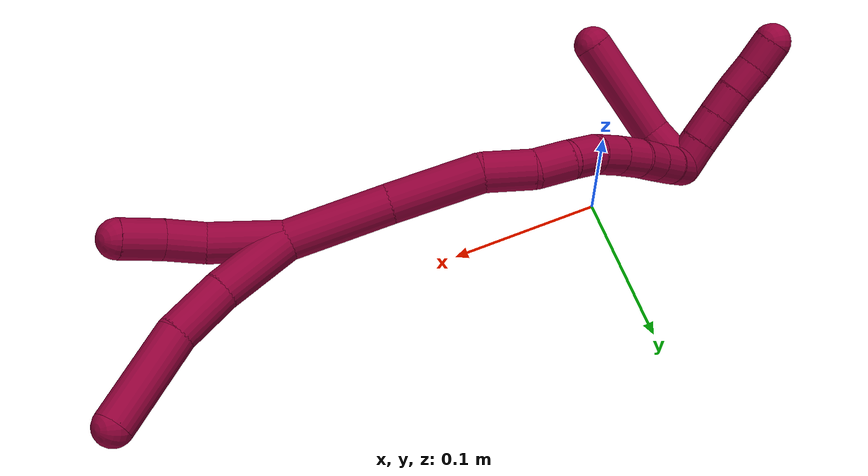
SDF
<sdf version="1.7">
 <world name="default">
  <model name="8">
   <static>0</static>
   <link name="8">
    <collision name="collision-cylinder-e_1_2_8">
     <pose>0.011384 0.009846 0.019577 -0.465997 0.479127 -0.115797</pose>
     <geometry><cylinder><radius>0.0125</radius><length>0.049389</length></cylinder></geometry>
     <surface>
      <friction><ode><mu>1.16</mu><mu2>1.16</mu2><slip1>0</slip1><slip2>0</slip2></ode></friction>
      <contact><ode><kp>1e+06</kp><kd>1</kd><max_vel>0</max_vel><min_depth>0.001</min_depth></ode></contact>
     </surface>
    </collision>
    <visual name="visual-cylinder-e_1_2_8">
     <pose>0.011384 0.009846 0.019577 -0.465997 0.479127 -0.115797</pose>
     <geometry><cylinder><radius>0.0125</radius><length>0.049389</length></cylinder></geometry>
     <material><ambient>0.584314 0 0.227451 1</ambient></material>
    </visual>
    <collision name="collision-cylinder-e_2_8_9">
     <pose>0.030438 0.028812 0.053347 -0.571119 0.4267 -0.127037</pose>
     <geometry><cylinder><radius>0.0125</radius><length>0.037062</length></cylinder></geometry>
     <surface>
      <friction><ode><mu>1.16</mu><mu2>1.16</mu2><slip1>0</slip1><slip2>0</slip2></ode></friction>
      <contact><ode><kp>1e+06</kp><kd>1</kd><max_vel>0</max_vel><min_depth>0.001</min_depth></ode></contact>
     </surface>
    </collision>
    <visual name="visual-cylinder-e_2_8_9">
     <pose>0.030438 0.028812 0.053347 -0.571119 0.4267 -0.127037</pose>
     <geometry><cylinder><radius>0.0125</radius><length>0.037062</length></cylinder></geometry>
     <material><ambient>0.584314 0 0.227451 1</ambient></material>
    </visual>
    <collision name="collision-cylinder-e_3_9_6">
     <pose>0.048497 0.058759 0.089169 -0.766531 0.333111 -0.135361</pose>
     <geometry><cylinder><radius>0.0125</radius><length>0.063549</length></cylinder></geometry>
     <surface>
      <friction><ode><mu>1.16</mu><mu2>1.16</mu2><slip1>0</slip1><slip2>0</slip2></ode></friction>
      <contact><ode><kp>1e+06</kp><kd>1</kd><max_vel>0</max_vel><min_depth>0.001</min_depth></ode></contact>
     </surface>
    </collision>
    <visual name="visual-cylinder-e_3_9_6">
     <pose>0.048497 0.058759 0.089169 -0.766531 0.333111 -0.135361</pose>
     <geometry><cylinder><radius>0.0125</radius><length>0.063549</length></cylinder></geometry>
     <material><ambient>0.584314 0 0.227451 1</ambient></material>
    </visual>
    <collision name="collision-cylinder-e_1_2_10">
     <pose>0.016674 -0.005962 0.015488 0.367466 0.78775 0.154152</pose>
     <geometry><cylinder><radius>0.0125</radius><length>0.047052</length></cylinder></geometry>
     <surface>
      <friction><ode><mu>1.16</mu><mu2>1.16</mu2><slip1>0</slip1><slip2>0</slip2></ode></friction>
      <contact><ode><kp>1e+06</kp><kd>1</kd><max_vel>0</max_vel><min_depth>0.001</min_depth></ode></contact>
     </surface>
    </collision>
    <visual name="visual-cylinder-e_1_2_10">
     <pose>0.016674 -0.005962 0.015488 0.367466 0.78775 0.154152</pose>
     <geometry><cylinder><radius>0.0125</radius><length>0.047052</length></cylinder></geometry>
     <material><ambient>0.584314 0 0.227451 1</ambient></material>
    </visual>
    <collision name="collision-cylinder-e_2_10_11">
     <pose>0.038949 -0.015821 0.042038 0.338655 0.445513 0.077414</pose>
     <geometry><cylinder><radius>0.0125</radius><length>0.025993</length></cylinder></geometry>
     <surface>
      <friction><ode><mu>1.16</mu><mu2>1.16</mu2><slip1>0</slip1><slip2>0</slip2></ode></friction>
      <contact><ode><kp>1e+06</kp><kd>1</kd><max_vel>0</max_vel><min_depth>0.001</min_depth></ode></contact>
     </surface>
    </collision>
    <visual name="visual-cylinder-e_2_10_11">
     <pose>0.038949 -0.015821 0.042038 0.338655 0.445513 0.077414</pose>
     <geometry><cylinder><radius>0.0125</radius><length>0.025993</length></cylinder></geometry>
     <material><ambient>0.584314 0 0.227451 1</ambient></material>
    </visual>
    <collision name="collision-cylinder-e_3_11_5">
     <pose>0.049377 -0.022595 0.06535 0.230806 0.366312 0.042937</pose>
     <geometry><cylinder><radius>0.0125</radius><length>0.026955</length></cylinder></geometry>
     <surface>
      <friction><ode><mu>1.16</mu><mu2>1.16</mu2><slip1>0</slip1><slip2>0</slip2></ode></friction>
      <contact><ode><kp>1e+06</kp><kd>1</kd><max_vel>0</max_vel><min_depth>0.001</min_depth></ode></contact>
     </surface>
    </collision>
    <visual name="visual-cylinder-e_3_11_5">
     <pose>0.049377 -0.022595 0.06535 0.230806 0.366312 0.042937</pose>
     <geometry><cylinder><radius>0.0125</radius><length>0.026955</length></cylinder></geometry>
     <material><ambient>0.584314 0 0.227451 1</ambient></material>
    </visual>
    <collision name="collision-cylinder-e_1_2_12">
     <pose>-0.022391 -0.002345 -0.023534 3.04229 -0.758045 -2.89333</pose>
     <geometry><cylinder><radius>0.0125</radius><length>0.065136</length></cylinder></geometry>
     <surface>
      <friction><ode><mu>1.16</mu><mu2>1.16</mu2><slip1>0</slip1><slip2>0</slip2></ode></friction>
      <contact><ode><kp>1e+06</kp><kd>1</kd><max_vel>0</max_vel><min_depth>0.001</min_depth></ode></contact>
     </surface>
    </collision>
    <visual name="visual-cylinder-e_1_2_12">
     <pose>-0.022391 -0.002345 -0.023534 3.04229 -0.758045 -2.89333</pose>
     <geometry><cylinder><radius>0.0125</radius><length>0.065136</length></cylinder></geometry>
     <material><ambient>0.584314 0 0.227451 1</ambient></material>
    </visual>
    <collision name="collision-cylinder-e_2_12_13">
     <pose>-0.066246 -0.006093 -0.067073 3.07155 -0.819354 -2.98059</pose>
     <geometry><cylinder><radius>0.0125</radius><length>0.05875</length></cylinder></geometry>
     <surface>
      <friction><ode><mu>1.16</mu><mu2>1.16</mu2><slip1>0</slip1><slip2>0</slip2></ode></friction>
      <contact><ode><kp>1e+06</kp><kd>1</kd><max_vel>0</max_vel><min_depth>0.001</min_depth></ode></contact>
     </surface>
    </collision>
    <visual name="visual-cylinder-e_2_12_13">
     <pose>-0.066246 -0.006093 -0.067073 3.07155 -0.819354 -2.98059</pose>
     <geometry><cylinder><radius>0.0125</radius><length>0.05875</length></cylinder></geometry>
     <material><ambient>0.584314 0 0.227451 1</ambient></material>
    </visual>
    <collision name="collision-cylinder-e_3_13_14">
     <pose>-0.098321 -0.00417 -0.098491 -2.85803 -0.728684 2.4253</pose>
     <geometry><cylinder><radius>0.0125</radius><length>0.031869</length></cylinder></geometry>
     <surface>
      <friction><ode><mu>1.16</mu><mu2>1.16</mu2><slip1>0</slip1><slip2>0</slip2></ode></friction>
      <contact><ode><kp>1e+06</kp><kd>1</kd><max_vel>0</max_vel><min_depth>0.001</min_depth></ode></contact>
     </surface>
    </collision>
    <visual name="visual-cylinder-e_3_13_14">
     <pose>-0.098321 -0.00417 -0.098491 -2.85803 -0.728684 2.4253</pose>
     <geometry><cylinder><radius>0.0125</radius><length>0.031869</length></cylinder></geometry>
     <material><ambient>0.584314 0 0.227451 1</ambient></material>
    </visual>
    <collision name="collision-cylinder-e_4_14_15">
     <pose>-0.115439 -0.001058 -0.119713 3.1198 -0.585655 -3.06935</pose>
     <geometry><cylinder><radius>0.0125</radius><length>0.023546</length></cylinder></geometry>
     <surface>
      <friction><ode><mu>1.16</mu><mu2>1.16</mu2><slip1>0</slip1><slip2>0</slip2></ode></friction>
      <contact><ode><kp>1e+06</kp><kd>1</kd><max_vel>0</max_vel><min_depth>0.001</min_depth></ode></contact>
     </surface>
    </collision>
    <visual name="visual-cylinder-e_4_14_15">
     <pose>-0.115439 -0.001058 -0.119713 3.1198 -0.585655 -3.06935</pose>
     <geometry><cylinder><radius>0.0125</radius><length>0.023546</length></cylinder></geometry>
     <material><ambient>0.584314 0 0.227451 1</ambient></material>
    </visual>
    <collision name="collision-cylinder-e_5_15_16">
     <pose>-0.124787 -0.001571 -0.139169 3.11056 -0.28626 -2.92708</pose>
     <geometry><cylinder><radius>0.0125</radius><length>0.020123</length></cylinder></geometry>
     <surface>
      <friction><ode><mu>1.16</mu><mu2>1.16</mu2><slip1>0</slip1><slip2>0</slip2></ode></friction>
      <contact><ode><kp>1e+06</kp><kd>1</kd><max_vel>0</max_vel><min_depth>0.001</min_depth></ode></contact>
     </surface>
    </collision>
    <visual name="visual-cylinder-e_5_15_16">
     <pose>-0.124787 -0.001571 -0.139169 3.11056 -0.28626 -2.92708</pose>
     <geometry><cylinder><radius>0.0125</radius><length>0.020123</length></cylinder></geometry>
     <material><ambient>0.584314 0 0.227451 1</ambient></material>
    </visual>
    <collision name="collision-cylinder-e_6_16_17">
     <pose>-0.128533 -0.000637 -0.158861 -3.01935 -0.089144 1.2596</pose>
     <geometry><cylinder><radius>0.0125</radius><length>0.020321</length></cylinder></geometry>
     <surface>
      <friction><ode><mu>1.16</mu><mu2>1.16</mu2><slip1>0</slip1><slip2>0</slip2></ode></friction>
      <contact><ode><kp>1e+06</kp><kd>1</kd><max_vel>0</max_vel><min_depth>0.001</min_depth></ode></contact>
     </surface>
    </collision>
    <visual name="visual-cylinder-e_6_16_17">
     <pose>-0.128533 -0.000637 -0.158861 -3.01935 -0.089144 1.2596</pose>
     <geometry><cylinder><radius>0.0125</radius><length>0.020321</length></cylinder></geometry>
     <material><ambient>0.584314 0 0.227451 1</ambient></material>
    </visual>
    <collision name="collision-cylinder-e_7_17_18">
     <pose>-0.1303 0.002318 -0.178793 -2.96928 -0.085679 0.921375</pose>
     <geometry><cylinder><radius>0.0125</radius><length>0.020144</length></cylinder></geometry>
     <surface>
      <friction><ode><mu>1.16</mu><mu2>1.16</mu2><slip1>0</slip1><slip2>0</slip2></ode></friction>
      <contact><ode><kp>1e+06</kp><kd>1</kd><max_vel>0</max_vel><min_depth>0.001</min_depth></ode></contact>
     </surface>
    </collision>
    <visual name="visual-cylinder-e_7_17_18">
     <pose>-0.1303 0.002318 -0.178793 -2.96928 -0.085679 0.921375</pose>
     <geometry><cylinder><radius>0.0125</radius><length>0.020144</length></cylinder></geometry>
     <material><ambient>0.584314 0 0.227451 1</ambient></material>
    </visual>
    <collision name="collision-cylinder-e_8_18_19">
     <pose>-0.130125 0.00543 -0.198541 -3.00142 0.103684 -1.27301</pose>
     <geometry><cylinder><radius>0.0125</radius><length>0.020027</length></cylinder></geometry>
     <surface>
      <friction><ode><mu>1.16</mu><mu2>1.16</mu2><slip1>0</slip1><slip2>0</slip2></ode></friction>
      <contact><ode><kp>1e+06</kp><kd>1</kd><max_vel>0</max_vel><min_depth>0.001</min_depth></ode></contact>
     </surface>
    </collision>
    <visual name="visual-cylinder-e_8_18_19">
     <pose>-0.130125 0.00543 -0.198541 -3.00142 0.103684 -1.27301</pose>
     <geometry><cylinder><radius>0.0125</radius><length>0.020027</length></cylinder></geometry>
     <material><ambient>0.584314 0 0.227451 1</ambient></material>
    </visual>
    <collision name="collision-cylinder-e_9_19_20">
     <pose>-0.128354 0.00824 -0.218281 -2.999 0.073492 -0.950793</pose>
     <geometry><cylinder><radius>0.0125</radius><length>0.020014</length></cylinder></geometry>
     <surface>
      <friction><ode><mu>1.16</mu><mu2>1.16</mu2><slip1>0</slip1><slip2>0</slip2></ode></friction>
      <contact><ode><kp>1e+06</kp><kd>1</kd><max_vel>0</max_vel><min_depth>0.001</min_depth></ode></contact>
     </surface>
    </collision>
    <visual name="visual-cylinder-e_9_19_20">
     <pose>-0.128354 0.00824 -0.218281 -2.999 0.073492 -0.950793</pose>
     <geometry><cylinder><radius>0.0125</radius><length>0.020014</length></cylinder></geometry>
     <material><ambient>0.584314 0 0.227451 1</ambient></material>
    </visual>
    <collision name="collision-cylinder-e_10_20_1">
     <pose>-0.125916 0.01023 -0.238033 -3.08371 0.170531 -2.48844</pose>
     <geometry><cylinder><radius>0.0125</radius><length>0.02007</length></cylinder></geometry>
     <surface>
      <friction><ode><mu>1.16</mu><mu2>1.16</mu2><slip1>0</slip1><slip2>0</slip2></ode></friction>
      <contact><ode><kp>1e+06</kp><kd>1</kd><max_vel>0</max_vel><min_depth>0.001</min_depth></ode></contact>
     </surface>
    </collision>
    <visual name="visual-cylinder-e_10_20_1">
     <pose>-0.125916 0.01023 -0.238033 -3.08371 0.170531 -2.48844</pose>
     <geometry><cylinder><radius>0.0125</radius><length>0.02007</length></cylinder></geometry>
     <material><ambient>0.584314 0 0.227451 1</ambient></material>
    </visual>
    <collision name="collision-cylinder-e_1_1_21">
     <pose>-0.131278 0.004546 -0.251213 2.05714 -0.784529 -1.20348</pose>
     <geometry><cylinder><radius>0.0125</radius><length>0.02</length></cylinder></geometry>
     <surface>
      <friction><ode><mu>1.16</mu><mu2>1.16</mu2><slip1>0</slip1><slip2>0</slip2></ode></friction>
      <contact><ode><kp>1e+06</kp><kd>1</kd><max_vel>0</max_vel><min_depth>0.001</min_depth></ode></contact>
     </surface>
    </collision>
    <visual name="visual-cylinder-e_1_1_21">
     <pose>-0.131278 0.004546 -0.251213 2.05714 -0.784529 -1.20348</pose>
     <geometry><cylinder><radius>0.0125</radius><length>0.02</length></cylinder></geometry>
     <material><ambient>0.584314 0 0.227451 1</ambient></material>
    </visual>
    <collision name="collision-cylinder-e_2_21_22">
     <pose>-0.145423 -0.00773 -0.258216 2.12139 -0.786598 -1.2762</pose>
     <geometry><cylinder><radius>0.0125</radius><length>0.02</length></cylinder></geometry>
     <surface>
      <friction><ode><mu>1.16</mu><mu2>1.16</mu2><slip1>0</slip1><slip2>0</slip2></ode></friction>
      <contact><ode><kp>1e+06</kp><kd>1</kd><max_vel>0</max_vel><min_depth>0.001</min_depth></ode></contact>
     </surface>
    </collision>
    <visual name="visual-cylinder-e_2_21_22">
     <pose>-0.145423 -0.00773 -0.258216 2.12139 -0.786598 -1.2762</pose>
     <geometry><cylinder><radius>0.0125</radius><length>0.02</length></cylinder></geometry>
     <material><ambient>0.584314 0 0.227451 1</ambient></material>
    </visual>
    <collision name="collision-cylinder-e_3_22_23">
     <pose>-0.159696 -0.019664 -0.265552 2.12249 -0.802924 -1.2994</pose>
     <geometry><cylinder><radius>0.0125</radius><length>0.02</length></cylinder></geometry>
     <surface>
      <friction><ode><mu>1.16</mu><mu2>1.16</mu2><slip1>0</slip1><slip2>0</slip2></ode></friction>
      <contact><ode><kp>1e+06</kp><kd>1</kd><max_vel>0</max_vel><min_depth>0.001</min_depth></ode></contact>
     </surface>
    </collision>
    <visual name="visual-cylinder-e_3_22_23">
     <pose>-0.159696 -0.019664 -0.265552 2.12249 -0.802924 -1.2994</pose>
     <geometry><cylinder><radius>0.0125</radius><length>0.02</length></cylinder></geometry>
     <material><ambient>0.584314 0 0.227451 1</ambient></material>
    </visual>
    <collision name="collision-cylinder-e_4_23_24">
     <pose>-0.17416 -0.031089 -0.27329 2.21028 -0.813996 -1.41803</pose>
     <geometry><cylinder><radius>0.0125</radius><length>0.02</length></cylinder></geometry>
     <surface>
      <friction><ode><mu>1.16</mu><mu2>1.16</mu2><slip1>0</slip1><slip2>0</slip2></ode></friction>
      <contact><ode><kp>1e+06</kp><kd>1</kd><max_vel>0</max_vel><min_depth>0.001</min_depth></ode></contact>
     </surface>
    </collision>
    <visual name="visual-cylinder-e_4_23_24">
     <pose>-0.17416 -0.031089 -0.27329 2.21028 -0.813996 -1.41803</pose>
     <geometry><cylinder><radius>0.0125</radius><length>0.02</length></cylinder></geometry>
     <material><ambient>0.584314 0 0.227451 1</ambient></material>
    </visual>
    <collision name="collision-cylinder-e_5_24_4">
     <pose>-0.188942 -0.042474 -0.280396 2.04407 -0.849828 -1.27423</pose>
     <geometry><cylinder><radius>0.0125</radius><length>0.02</length></cylinder></geometry>
     <surface>
      <friction><ode><mu>1.16</mu><mu2>1.16</mu2><slip1>0</slip1><slip2>0</slip2></ode></friction>
      <contact><ode><kp>1e+06</kp><kd>1</kd><max_vel>0</max_vel><min_depth>0.001</min_depth></ode></contact>
     </surface>
    </collision>
    <visual name="visual-cylinder-e_5_24_4">
     <pose>-0.188942 -0.042474 -0.280396 2.04407 -0.849828 -1.27423</pose>
     <geometry><cylinder><radius>0.0125</radius><length>0.02</length></cylinder></geometry>
     <material><ambient>0.584314 0 0.227451 1</ambient></material>
    </visual>
    <collision name="collision-cylinder-e_1_1_25">
     <pose>-0.11916 -0.002962 -0.244508 1.32879 0.342402 0.269174</pose>
     <geometry><cylinder><radius>0.0125</radius><length>0.030103</length></cylinder></geometry>
     <surface>
      <friction><ode><mu>1.16</mu><mu2>1.16</mu2><slip1>0</slip1><slip2>0</slip2></ode></friction>
      <contact><ode><kp>1e+06</kp><kd>1</kd><max_vel>0</max_vel><min_depth>0.001</min_depth></ode></contact>
     </surface>
    </collision>
    <visual name="visual-cylinder-e_1_1_25">
     <pose>-0.11916 -0.002962 -0.244508 1.32879 0.342402 0.269174</pose>
     <geometry><cylinder><radius>0.0125</radius><length>0.030103</length></cylinder></geometry>
     <material><ambient>0.584314 0 0.227451 1</ambient></material>
    </visual>
    <collision name="collision-cylinder-e_2_25_3">
     <pose>-0.111293 -0.048793 -0.227499 1.16937 0.080596 0.053361</pose>
     <geometry><cylinder><radius>0.0125</radius><length>0.069897</length></cylinder></geometry>
     <surface>
      <friction><ode><mu>1.16</mu><mu2>1.16</mu2><slip1>0</slip1><slip2>0</slip2></ode></friction>
      <contact><ode><kp>1e+06</kp><kd>1</kd><max_vel>0</max_vel><min_depth>0.001</min_depth></ode></contact>
     </surface>
    </collision>
    <visual name="visual-cylinder-e_2_25_3">
     <pose>-0.111293 -0.048793 -0.227499 1.16937 0.080596 0.053361</pose>
     <geometry><cylinder><radius>0.0125</radius><length>0.069897</length></cylinder></geometry>
     <material><ambient>0.584314 0 0.227451 1</ambient></material>
    </visual>
    <collision name="collision-sphere-3">
     <pose>-0.108479 -0.080859 -0.213888 0 -0 0</pose>
     <geometry><sphere><radius>0.0125</radius></sphere></geometry>
     <surface>
      <friction><ode><mu>1.16</mu><mu2>1.16</mu2><slip1>0</slip1><slip2>0</slip2></ode></friction>
      <contact><ode><kp>1e+06</kp><kd>1</kd><max_vel>0</max_vel><min_depth>0.001</min_depth></ode></contact>
     </surface>
    </collision>
    <visual name="visual-sphere-3">
     <pose>-0.108479 -0.080859 -0.213888 0 -0 0</pose>
     <geometry><sphere><radius>0.0125</radius></sphere></geometry>
     <material><ambient>0.584314 0 0.227451 1</ambient></material>
    </visual>
    <collision name="collision-sphere-25">
     <pose>-0.114106 -0.016727 -0.24111 0 -0 0</pose>
     <geometry><sphere><radius>0.0125</radius></sphere></geometry>
     <surface>
      <friction><ode><mu>1.16</mu><mu2>1.16</mu2><slip1>0</slip1><slip2>0</slip2></ode></friction>
      <contact><ode><kp>1e+06</kp><kd>1</kd><max_vel>0</max_vel><min_depth>0.001</min_depth></ode></contact>
     </surface>
    </collision>
    <visual name="visual-sphere-25">
     <pose>-0.114106 -0.016727 -0.24111 0 -0 0</pose>
     <geometry><sphere><radius>0.0125</radius></sphere></geometry>
     <material><ambient>0.584314 0 0.227451 1</ambient></material>
    </visual>
    <collision name="collision-sphere-4">
     <pose>-0.196454 -0.048349 -0.283405 0 -0 0</pose>
     <geometry><sphere><radius>0.0125</radius></sphere></geometry>
     <surface>
      <friction><ode><mu>1.16</mu><mu2>1.16</mu2><slip1>0</slip1><slip2>0</slip2></ode></friction>
      <contact><ode><kp>1e+06</kp><kd>1</kd><max_vel>0</max_vel><min_depth>0.001</min_depth></ode></contact>
     </surface>
    </collision>
    <visual name="visual-sphere-4">
     <pose>-0.196454 -0.048349 -0.283405 0 -0 0</pose>
     <geometry><sphere><radius>0.0125</radius></sphere></geometry>
     <material><ambient>0.584314 0 0.227451 1</ambient></material>
    </visual>
    <collision name="collision-sphere-24">
     <pose>-0.181431 -0.036598 -0.277388 0 -0 0</pose>
     <geometry><sphere><radius>0.0125</radius></sphere></geometry>
     <surface>
      <friction><ode><mu>1.16</mu><mu2>1.16</mu2><slip1>0</slip1><slip2>0</slip2></ode></friction>
      <contact><ode><kp>1e+06</kp><kd>1</kd><max_vel>0</max_vel><min_depth>0.001</min_depth></ode></contact>
     </surface>
    </collision>
    <visual name="visual-sphere-24">
     <pose>-0.181431 -0.036598 -0.277388 0 -0 0</pose>
     <geometry><sphere><radius>0.0125</radius></sphere></geometry>
     <material><ambient>0.584314 0 0.227451 1</ambient></material>
    </visual>
    <collision name="collision-sphere-23">
     <pose>-0.16689 -0.02558 -0.269193 0 -0 0</pose>
     <geometry><sphere><radius>0.0125</radius></sphere></geometry>
     <surface>
      <friction><ode><mu>1.16</mu><mu2>1.16</mu2><slip1>0</slip1><slip2>0</slip2></ode></friction>
      <contact><ode><kp>1e+06</kp><kd>1</kd><max_vel>0</max_vel><min_depth>0.001</min_depth></ode></contact>
     </surface>
    </collision>
    <visual name="visual-sphere-23">
     <pose>-0.16689 -0.02558 -0.269193 0 -0 0</pose>
     <geometry><sphere><radius>0.0125</radius></sphere></geometry>
     <material><ambient>0.584314 0 0.227451 1</ambient></material>
    </visual>
    <collision name="collision-sphere-22">
     <pose>-0.152502 -0.013749 -0.261911 0 -0 0</pose>
     <geometry><sphere><radius>0.0125</radius></sphere></geometry>
     <surface>
      <friction><ode><mu>1.16</mu><mu2>1.16</mu2><slip1>0</slip1><slip2>0</slip2></ode></friction>
      <contact><ode><kp>1e+06</kp><kd>1</kd><max_vel>0</max_vel><min_depth>0.001</min_depth></ode></contact>
     </surface>
    </collision>
    <visual name="visual-sphere-22">
     <pose>-0.152502 -0.013749 -0.261911 0 -0 0</pose>
     <geometry><sphere><radius>0.0125</radius></sphere></geometry>
     <material><ambient>0.584314 0 0.227451 1</ambient></material>
    </visual>
    <collision name="collision-sphere-21">
     <pose>-0.138343 -0.001711 -0.254521 0 -0 0</pose>
     <geometry><sphere><radius>0.0125</radius></sphere></geometry>
     <surface>
      <friction><ode><mu>1.16</mu><mu2>1.16</mu2><slip1>0</slip1><slip2>0</slip2></ode></friction>
      <contact><ode><kp>1e+06</kp><kd>1</kd><max_vel>0</max_vel><min_depth>0.001</min_depth></ode></contact>
     </surface>
    </collision>
    <visual name="visual-sphere-21">
     <pose>-0.138343 -0.001711 -0.254521 0 -0 0</pose>
     <geometry><sphere><radius>0.0125</radius></sphere></geometry>
     <material><ambient>0.584314 0 0.227451 1</ambient></material>
    </visual>
    <collision name="collision-sphere-1">
     <pose>-0.124213 0.010802 -0.247905 0 -0 0</pose>
     <geometry><sphere><radius>0.0125</radius></sphere></geometry>
     <surface>
      <friction><ode><mu>1.16</mu><mu2>1.16</mu2><slip1>0</slip1><slip2>0</slip2></ode></friction>
      <contact><ode><kp>1e+06</kp><kd>1</kd><max_vel>0</max_vel><min_depth>0.001</min_depth></ode></contact>
     </surface>
    </collision>
    <visual name="visual-sphere-1">
     <pose>-0.124213 0.010802 -0.247905 0 -0 0</pose>
     <geometry><sphere><radius>0.0125</radius></sphere></geometry>
     <material><ambient>0.584314 0 0.227451 1</ambient></material>
    </visual>
    <collision name="collision-sphere-11">
     <pose>0.04455 -0.019717 0.0531 0 -0 0</pose>
     <geometry><sphere><radius>0.0125</radius></sphere></geometry>
     <surface>
      <friction><ode><mu>1.16</mu><mu2>1.16</mu2><slip1>0</slip1><slip2>0</slip2></ode></friction>
      <contact><ode><kp>1e+06</kp><kd>1</kd><max_vel>0</max_vel><min_depth>0.001</min_depth></ode></contact>
     </surface>
    </collision>
    <visual name="visual-sphere-11">
     <pose>0.04455 -0.019717 0.0531 0 -0 0</pose>
     <geometry><sphere><radius>0.0125</radius></sphere></geometry>
     <material><ambient>0.584314 0 0.227451 1</ambient></material>
    </visual>
    <collision name="collision-sphere-10">
     <pose>0.033349 -0.011924 0.030976 0 -0 0</pose>
     <geometry><sphere><radius>0.0125</radius></sphere></geometry>
     <surface>
      <friction><ode><mu>1.16</mu><mu2>1.16</mu2><slip1>0</slip1><slip2>0</slip2></ode></friction>
      <contact><ode><kp>1e+06</kp><kd>1</kd><max_vel>0</max_vel><min_depth>0.001</min_depth></ode></contact>
     </surface>
    </collision>
    <visual name="visual-sphere-10">
     <pose>0.033349 -0.011924 0.030976 0 -0 0</pose>
     <geometry><sphere><radius>0.0125</radius></sphere></geometry>
     <material><ambient>0.584314 0 0.227451 1</ambient></material>
    </visual>
    <collision name="collision-sphere-6">
     <pose>0.058887 0.079588 0.110798 0 -0 0</pose>
     <geometry><sphere><radius>0.0125</radius></sphere></geometry>
     <surface>
      <friction><ode><mu>1.16</mu><mu2>1.16</mu2><slip1>0</slip1><slip2>0</slip2></ode></friction>
      <contact><ode><kp>1e+06</kp><kd>1</kd><max_vel>0</max_vel><min_depth>0.001</min_depth></ode></contact>
     </surface>
    </collision>
    <visual name="visual-sphere-6">
     <pose>0.058887 0.079588 0.110798 0 -0 0</pose>
     <geometry><sphere><radius>0.0125</radius></sphere></geometry>
     <material><ambient>0.584314 0 0.227451 1</ambient></material>
    </visual>
    <collision name="collision-sphere-9">
     <pose>0.038107 0.037931 0.067539 0 -0 0</pose>
     <geometry><sphere><radius>0.0125</radius></sphere></geometry>
     <surface>
      <friction><ode><mu>1.16</mu><mu2>1.16</mu2><slip1>0</slip1><slip2>0</slip2></ode></friction>
      <contact><ode><kp>1e+06</kp><kd>1</kd><max_vel>0</max_vel><min_depth>0.001</min_depth></ode></contact>
     </surface>
    </collision>
    <visual name="visual-sphere-9">
     <pose>0.038107 0.037931 0.067539 0 -0 0</pose>
     <geometry><sphere><radius>0.0125</radius></sphere></geometry>
     <material><ambient>0.584314 0 0.227451 1</ambient></material>
    </visual>
    <collision name="collision-sphere-2">
     <geometry><sphere><radius>0.0125</radius></sphere></geometry>
     <surface>
      <friction><ode><mu>1.16</mu><mu2>1.16</mu2><slip1>0</slip1><slip2>0</slip2></ode></friction>
      <contact><ode><kp>1e+06</kp><kd>1</kd><max_vel>0</max_vel><min_depth>0.001</min_depth></ode></contact>
     </surface>
    </collision>
    <visual name="visual-sphere-2">
     <geometry><sphere><radius>0.0125</radius></sphere></geometry>
     <material><ambient>0.584314 0 0.227451 1</ambient></material>
    </visual>
    <collision name="collision-sphere-19">
     <pose>-0.129089 0.006822 -0.208403 0 -0 0</pose>
     <geometry><sphere><radius>0.0125</radius></sphere></geometry>
     <surface>
      <friction><ode><mu>1.16</mu><mu2>1.16</mu2><slip1>0</slip1><slip2>0</slip2></ode></friction>
      <contact><ode><kp>1e+06</kp><kd>1</kd><max_vel>0</max_vel><min_depth>0.001</min_depth></ode></contact>
     </surface>
    </collision>
    <visual name="visual-sphere-19">
     <pose>-0.129089 0.006822 -0.208403 0 -0 0</pose>
     <geometry><sphere><radius>0.0125</radius></sphere></geometry>
     <material><ambient>0.584314 0 0.227451 1</ambient></material>
    </visual>
    <collision name="collision-sphere-8">
     <pose>0.022769 0.019693 0.039155 0 -0 0</pose>
     <geometry><sphere><radius>0.0125</radius></sphere></geometry>
     <surface>
      <friction><ode><mu>1.16</mu><mu2>1.16</mu2><slip1>0</slip1><slip2>0</slip2></ode></friction>
      <contact><ode><kp>1e+06</kp><kd>1</kd><max_vel>0</max_vel><min_depth>0.001</min_depth></ode></contact>
     </surface>
    </collision>
    <visual name="visual-sphere-8">
     <pose>0.022769 0.019693 0.039155 0 -0 0</pose>
     <geometry><sphere><radius>0.0125</radius></sphere></geometry>
     <material><ambient>0.584314 0 0.227451 1</ambient></material>
    </visual>
    <collision name="collision-sphere-5">
     <pose>0.054204 -0.025474 0.0776 0 -0 0</pose>
     <geometry><sphere><radius>0.0125</radius></sphere></geometry>
     <surface>
      <friction><ode><mu>1.16</mu><mu2>1.16</mu2><slip1>0</slip1><slip2>0</slip2></ode></friction>
      <contact><ode><kp>1e+06</kp><kd>1</kd><max_vel>0</max_vel><min_depth>0.001</min_depth></ode></contact>
     </surface>
    </collision>
    <visual name="visual-sphere-5">
     <pose>0.054204 -0.025474 0.0776 0 -0 0</pose>
     <geometry><sphere><radius>0.0125</radius></sphere></geometry>
     <material><ambient>0.584314 0 0.227451 1</ambient></material>
    </visual>
    <collision name="collision-sphere-12">
     <pose>-0.044781 -0.00469 -0.047068 0 -0 0</pose>
     <geometry><sphere><radius>0.0125</radius></sphere></geometry>
     <surface>
      <friction><ode><mu>1.16</mu><mu2>1.16</mu2><slip1>0</slip1><slip2>0</slip2></ode></friction>
      <contact><ode><kp>1e+06</kp><kd>1</kd><max_vel>0</max_vel><min_depth>0.001</min_depth></ode></contact>
     </surface>
    </collision>
    <visual name="visual-sphere-12">
     <pose>-0.044781 -0.00469 -0.047068 0 -0 0</pose>
     <geometry><sphere><radius>0.0125</radius></sphere></geometry>
     <material><ambient>0.584314 0 0.227451 1</ambient></material>
    </visual>
    <collision name="collision-sphere-13">
     <pose>-0.08771 -0.007496 -0.087078 0 -0 0</pose>
     <geometry><sphere><radius>0.0125</radius></sphere></geometry>
     <surface>
      <friction><ode><mu>1.16</mu><mu2>1.16</mu2><slip1>0</slip1><slip2>0</slip2></ode></friction>
      <contact><ode><kp>1e+06</kp><kd>1</kd><max_vel>0</max_vel><min_depth>0.001</min_depth></ode></contact>
     </surface>
    </collision>
    <visual name="visual-sphere-13">
     <pose>-0.08771 -0.007496 -0.087078 0 -0 0</pose>
     <geometry><sphere><radius>0.0125</radius></sphere></geometry>
     <material><ambient>0.584314 0 0.227451 1</ambient></material>
    </visual>
    <collision name="collision-sphere-14">
     <pose>-0.108931 -0.000844 -0.109904 0 -0 0</pose>
     <geometry><sphere><radius>0.0125</radius></sphere></geometry>
     <surface>
      <friction><ode><mu>1.16</mu><mu2>1.16</mu2><slip1>0</slip1><slip2>0</slip2></ode></friction>
      <contact><ode><kp>1e+06</kp><kd>1</kd><max_vel>0</max_vel><min_depth>0.001</min_depth></ode></contact>
     </surface>
    </collision>
    <visual name="visual-sphere-14">
     <pose>-0.108931 -0.000844 -0.109904 0 -0 0</pose>
     <geometry><sphere><radius>0.0125</radius></sphere></geometry>
     <material><ambient>0.584314 0 0.227451 1</ambient></material>
    </visual>
    <collision name="collision-sphere-15">
     <pose>-0.121946 -0.001272 -0.129521 0 -0 0</pose>
     <geometry><sphere><radius>0.0125</radius></sphere></geometry>
     <surface>
      <friction><ode><mu>1.16</mu><mu2>1.16</mu2><slip1>0</slip1><slip2>0</slip2></ode></friction>
      <contact><ode><kp>1e+06</kp><kd>1</kd><max_vel>0</max_vel><min_depth>0.001</min_depth></ode></contact>
     </surface>
    </collision>
    <visual name="visual-sphere-15">
     <pose>-0.121946 -0.001272 -0.129521 0 -0 0</pose>
     <geometry><sphere><radius>0.0125</radius></sphere></geometry>
     <material><ambient>0.584314 0 0.227451 1</ambient></material>
    </visual>
    <collision name="collision-sphere-16">
     <pose>-0.127629 -0.001871 -0.148816 0 -0 0</pose>
     <geometry><sphere><radius>0.0125</radius></sphere></geometry>
     <surface>
      <friction><ode><mu>1.16</mu><mu2>1.16</mu2><slip1>0</slip1><slip2>0</slip2></ode></friction>
      <contact><ode><kp>1e+06</kp><kd>1</kd><max_vel>0</max_vel><min_depth>0.001</min_depth></ode></contact>
     </surface>
    </collision>
    <visual name="visual-sphere-16">
     <pose>-0.127629 -0.001871 -0.148816 0 -0 0</pose>
     <geometry><sphere><radius>0.0125</radius></sphere></geometry>
     <material><ambient>0.584314 0 0.227451 1</ambient></material>
    </visual>
    <collision name="collision-sphere-17">
     <pose>-0.129438 0.000597 -0.168906 0 -0 0</pose>
     <geometry><sphere><radius>0.0125</radius></sphere></geometry>
     <surface>
      <friction><ode><mu>1.16</mu><mu2>1.16</mu2><slip1>0</slip1><slip2>0</slip2></ode></friction>
      <contact><ode><kp>1e+06</kp><kd>1</kd><max_vel>0</max_vel><min_depth>0.001</min_depth></ode></contact>
     </surface>
    </collision>
    <visual name="visual-sphere-17">
     <pose>-0.129438 0.000597 -0.168906 0 -0 0</pose>
     <geometry><sphere><radius>0.0125</radius></sphere></geometry>
     <material><ambient>0.584314 0 0.227451 1</ambient></material>
    </visual>
    <collision name="collision-sphere-18">
     <pose>-0.131161 0.004039 -0.188679 0 -0 0</pose>
     <geometry><sphere><radius>0.0125</radius></sphere></geometry>
     <surface>
      <friction><ode><mu>1.16</mu><mu2>1.16</mu2><slip1>0</slip1><slip2>0</slip2></ode></friction>
      <contact><ode><kp>1e+06</kp><kd>1</kd><max_vel>0</max_vel><min_depth>0.001</min_depth></ode></contact>
     </surface>
    </collision>
    <visual name="visual-sphere-18">
     <pose>-0.131161 0.004039 -0.188679 0 -0 0</pose>
     <geometry><sphere><radius>0.0125</radius></sphere></geometry>
     <material><ambient>0.584314 0 0.227451 1</ambient></material>
    </visual>
    <collision name="collision-sphere-20">
     <pose>-0.127619 0.009658 -0.22816 0 -0 0</pose>
     <geometry><sphere><radius>0.0125</radius></sphere></geometry>
     <surface>
      <friction><ode><mu>1.16</mu><mu2>1.16</mu2><slip1>0</slip1><slip2>0</slip2></ode></friction>
      <contact><ode><kp>1e+06</kp><kd>1</kd><max_vel>0</max_vel><min_depth>0.001</min_depth></ode></contact>
     </surface>
    </collision>
    <visual name="visual-sphere-20">
     <pose>-0.127619 0.009658 -0.22816 0 -0 0</pose>
     <geometry><sphere><radius>0.0125</radius></sphere></geometry>
     <material><ambient>0.584314 0 0.227451 1</ambient></material>
    </visual>
    <inertial>
     <pose>-0.061477 -0.002171 -0.095767 0 -0 0</pose>
     <mass>0.75</mass>
     <inertia><ixx>3.4e-05</ixx><ixy>0</ixy><ixz>0</ixz><iyy>9.6e-05</iyy><iyz>0</iyz><izz>2.5e-05</izz></inertia>
    </inertial>
   </link>
   <pose>0.209357 0.003502 0.12791 -0.385386 0.765005 -0.357264</pose>
  </model>
 </world>
</sdf>
